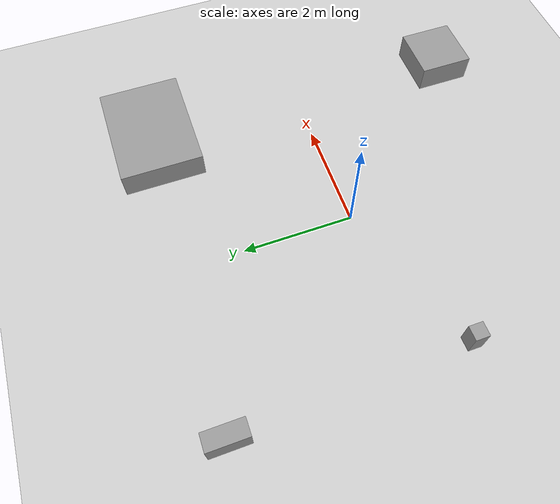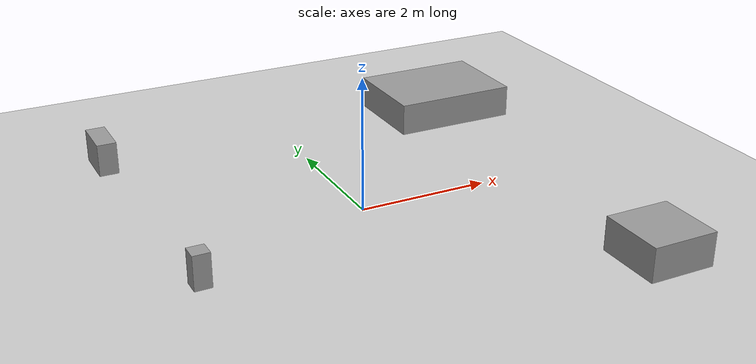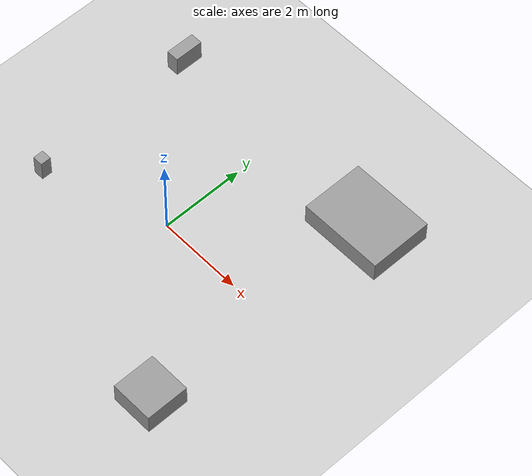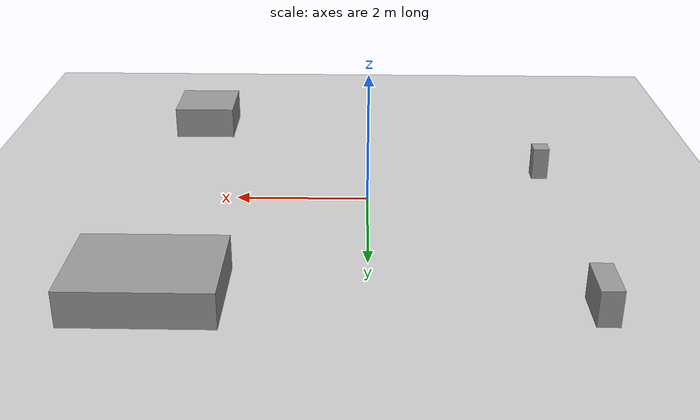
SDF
<sdf version="1.6">
 <world name="default">
  <plugin name="gazebo_ros_state" filename="libgazebo_ros_state.so">
   <ros><namespace>/gazebo</namespace></ros>
   <update_rate>1.0</update_rate>
  </plugin>
  <include><uri>model://ground_plane</uri></include>
  <include><uri>model://sun</uri></include>
  <scene><shadows>false</shadows></scene>
  <physics type="ode">
   <real_time_update_rate>2000.0</real_time_update_rate>
   <max_step_size>0.001</max_step_size>
   <real_time_factor>2</real_time_factor>
   <ode>
    <solver>
     <type>quick</type>
     <iters>150</iters>
     <precon_iters>0</precon_iters>
     <sor>1.400000</sor>
     <use_dynamic_moi_rescaling>1</use_dynamic_moi_rescaling>
    </solver>
    <constraints>
     <cfm>0.00001</cfm>
     <erp>0.2</erp>
     <contact_max_correcting_vel>2000.000000</contact_max_correcting_vel>
     <contact_surface_layer>0.01000</contact_surface_layer>
    </constraints>
   </ode>
  </physics>
  <include><uri>model://obstacle1</uri></include>
  <include><uri>model://obstacle2</uri></include>
  <include><uri>model://obstacle3</uri></include>
  <include><uri>model://obstacle4</uri></include>
 </world>
</sdf>

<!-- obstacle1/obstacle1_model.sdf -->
<sdf version='1.6'>
  <model name='obstacle1'>
      <pose>2.86 -3.0 0 0 0 0</pose>
      <static>true</static>
      <link name='link'>
        <inertial>
          <mass>1</mass>
          <inertia>
            <ixx>0.166667</ixx>
            <ixy>0</ixy>
            <ixz>0</ixz>
            <iyy>0.166667</iyy>
            <iyz>0</iyz>
            <izz>0.166667</izz>
          </inertia>
          <pose>0 0 0 0 -0 0</pose>
        </inertial>
        <collision name='collision'>
          <geometry>
            <box>
              <size>1 1 1</size>
            </box>
          </geometry>
          <max_contacts>10</max_contacts>
          <surface>
            <contact>
              <ode/>
            </contact>
            <bounce/>
            <friction>
              <torsional>
                <ode/>
              </torsional>
              <ode/>
            </friction>
          </surface>
        </collision>
        <visual name='visual'>
          <geometry>
            <box>
              <size>1 1 1</size>
            </box>
          </geometry>
          <material>
            <script>
              <name>Gazebo/Grey</name>
              <uri>file://media/materials/scripts/gazebo.material</uri>
            </script>
          </material>
        </visual>
        <self_collide>0</self_collide>
        <enable_wind>0</enable_wind>
        <kinematic>0</kinematic>
      </link>
    </model>
</sdf>

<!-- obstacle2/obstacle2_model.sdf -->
<sdf version='1.6'>
  <model name='obstacle2'>
      <pose>-2.93 3.17 0 0 0 0</pose>
      <static>true</static>
      <link name='link'>
        <inertial>
          <mass>1</mass>
          <inertia>
            <ixx>0.166667</ixx>
            <ixy>0</ixy>
            <ixz>0</ixz>
            <iyy>0.166667</iyy>
            <iyz>0</iyz>
            <izz>0.166667</izz>
          </inertia>
          <pose>0 0 0 0 -0 0</pose>
        </inertial>
        <collision name='collision'>
          <geometry>
            <box>
              <size>0.3 0.7 1</size>
            </box>
          </geometry>
          <max_contacts>10</max_contacts>
          <surface>
            <contact>
              <ode/>
            </contact>
            <bounce/>
            <friction>
              <torsional>
                <ode/>
              </torsional>
              <ode/>
            </friction>
          </surface>
        </collision>
        <visual name='visual'>
          <geometry>
            <box>
              <size>0.3 0.7 1</size>
            </box>
          </geometry>
          <material>
            <script>
              <name>Gazebo/Grey</name>
              <uri>file://media/materials/scripts/gazebo.material</uri>
            </script>
          </material>
        </visual>
        <self_collide>0</self_collide>
        <enable_wind>0</enable_wind>
        <kinematic>0</kinematic>
      </link>
    </model>
</sdf>

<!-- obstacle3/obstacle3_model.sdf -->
<sdf version='1.6'>
  <model name='obstacle3'>
      <pose>-2.77 -0.96 0 0 0 0</pose>
      <static>true</static>
      <link name='link'>
        <inertial>
          <mass>1</mass>
          <inertia>
            <ixx>0.166667</ixx>
            <ixy>0</ixy>
            <ixz>0</ixz>
            <iyy>0.166667</iyy>
            <iyz>0</iyz>
            <izz>0.166667</izz>
          </inertia>
          <pose>0 0 0 0 -0 0</pose>
        </inertial>
        <collision name='collision'>
          <geometry>
            <box>
              <size>0.25 0.25 1</size>
            </box>
          </geometry>
          <max_contacts>10</max_contacts>
          <surface>
            <contact>
              <ode/>
            </contact>
            <bounce/>
            <friction>
              <torsional>
                <ode/>
              </torsional>
              <ode/>
            </friction>
          </surface>
        </collision>
        <visual name='visual'>
          <geometry>
            <box>
              <size>0.25 0.25 1</size>
            </box>
          </geometry>
          <material>
            <script>
              <name>Gazebo/Grey</name>
              <uri>file://media/materials/scripts/gazebo.material</uri>
            </script>
          </material>
        </visual>
        <self_collide>0</self_collide>
        <enable_wind>0</enable_wind>
        <kinematic>0</kinematic>
      </link>
    </model>
</sdf>

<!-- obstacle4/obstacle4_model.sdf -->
<sdf version='1.6'>
  <model name='obstacle4'>
      <pose>2.83 2.93 0 0 0 0</pose>
      <static>true</static>
      <link name='link'>
        <inertial>
          <mass>1</mass>
          <inertia>
            <ixx>0.166667</ixx>
            <ixy>0</ixy>
            <ixz>0</ixz>
            <iyy>0.166667</iyy>
            <iyz>0</iyz>
            <izz>0.166667</izz>
          </inertia>
          <pose>0 0 0 0 -0 0</pose>
        </inertial>
        <collision name='collision'>
          <geometry>
            <box>
              <size>2 1.5 1</size>
            </box>
          </geometry>
          <max_contacts>10</max_contacts>
          <surface>
            <contact>
              <ode/>
            </contact>
            <bounce/>
            <friction>
              <torsional>
                <ode/>
              </torsional>
              <ode/>
            </friction>
          </surface>
        </collision>
        <visual name='visual'>
          <geometry>
            <box>
              <size>2 1.5 1</size>
            </box>
          </geometry>
          <material>
            <script>
              <name>Gazebo/Grey</name>
              <uri>file://media/materials/scripts/gazebo.material</uri>
            </script>
          </material>
        </visual>
        <self_collide>0</self_collide>
        <enable_wind>0</enable_wind>
        <kinematic>0</kinematic>
      </link>
    </model>
</sdf>
